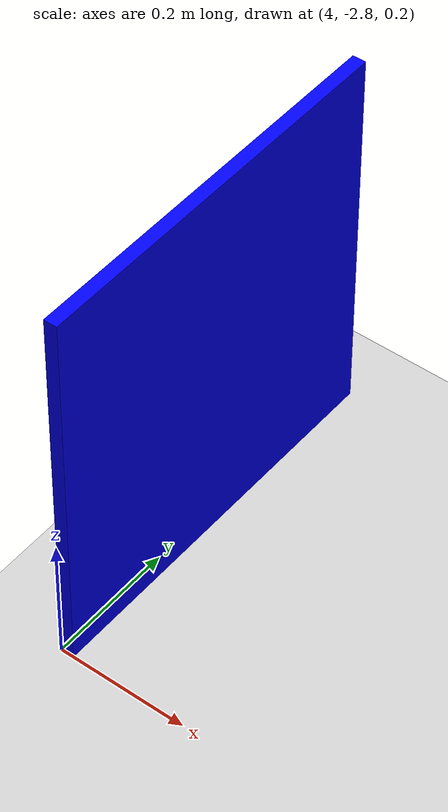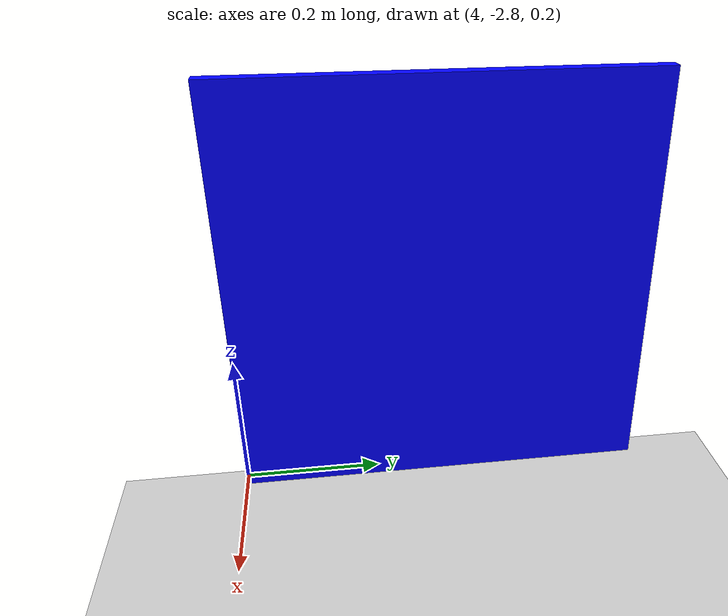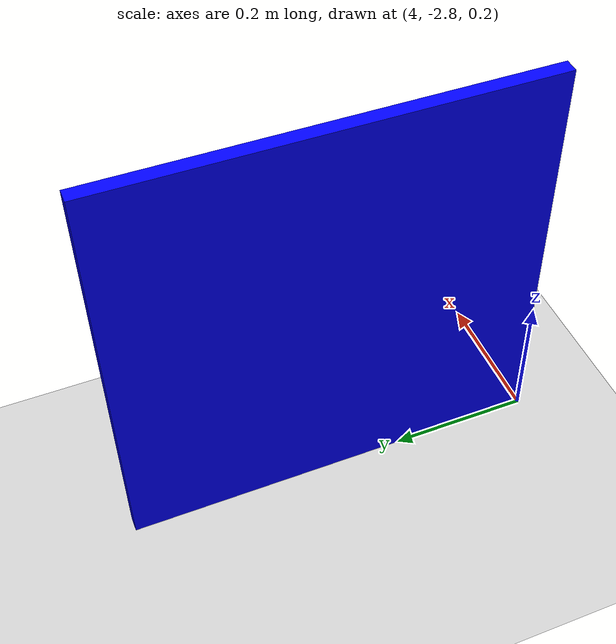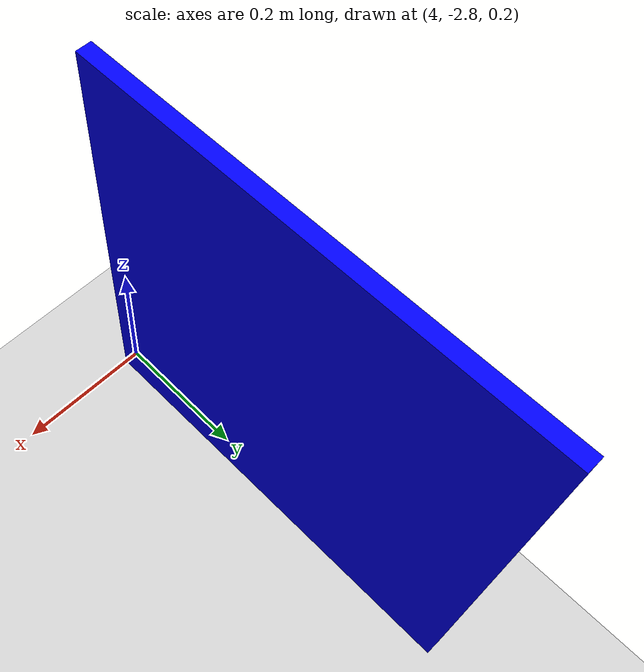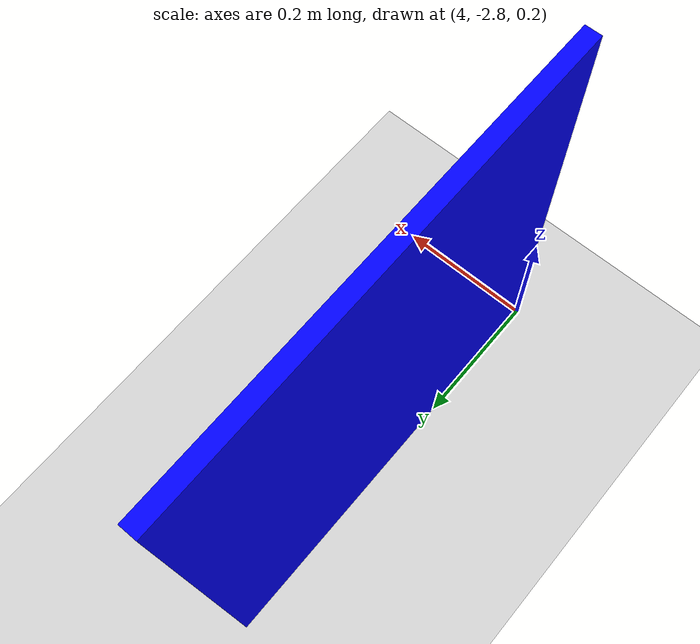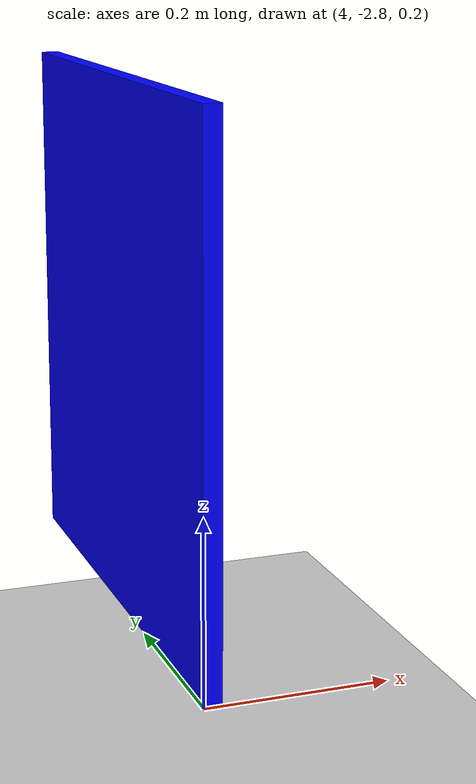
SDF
<sdf version="1.6">
 <world name="default">
  <model name="ground_plane">
   <static>1</static>
   <link name="link">
    <collision name="collision">
     <geometry><plane><normal>0 0 1</normal><size>100 100</size></plane></geometry>
     <surface>
      <contact><collide_bitmask>65535</collide_bitmask></contact>
      <friction><ode><mu>100</mu><mu2>50</mu2></ode></friction>
     </surface>
    </collision>
    <visual name="visual">
     <cast_shadows>0</cast_shadows>
     <geometry><plane><normal>0 0 1</normal><size>100 100</size></plane></geometry>
     <material>
      <script><uri>file://media/materials/scripts/gazebo.material</uri><name>Gazebo/Grey</name></script>
     </material>
    </visual>
   </link>
  </model>
  <model name="unit_box_1">
   <link name="link">
    <pose>0 0 0.5 0 -0 0</pose>
    <visual name="visual">
     <geometry><box><size>0.02 0.6 0.6</size></box></geometry>
     <material><ambient>0 0 1 1</ambient></material>
    </visual>
   </link>
   <static>1</static>
   <pose>4.01 -2.5 0 0 -0 0</pose>
  </model>
 </world>
</sdf>
